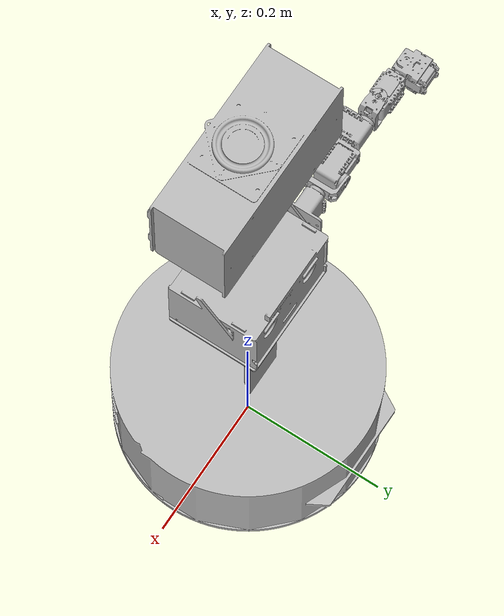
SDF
<sdf version='1.6'>
  <model name='v2mini'>
    <link name='base_footprint'>
      <pose frame=''>0 0 0 0 -0 0</pose>
      <inertial>
        <pose frame=''>0 0 0 0 -0 0</pose>
        <mass>10</mass>
        <inertia>
          <ixx>100</ixx>
          <ixy>0</ixy>
          <ixz>0</ixz>
          <iyy>100</iyy>
          <iyz>0</iyz>
          <izz>100</izz>
        </inertia>
      </inertial>
      <collision name='base_footprint_fixed_joint_lump__base_link_collision'>
        <pose frame=''>0 0 0.066 0 -0 0</pose>
        <geometry>
          <cylinder>
            <length>0.132</length>
            <radius>0.175</radius>
          </cylinder>
        </geometry>
      </collision>
      <visual name='base_footprint_fixed_joint_lump__base_link_visual'>
        <pose frame=''>0 0 0.0192 0 -0 0</pose>
        <geometry>
          <mesh>
            <scale>1 1 1</scale>
            <uri>model://v2mini_description/meshes/base/base.dae</uri>
          </mesh>
        </geometry>
      </visual>
    </link>
    <link name='back_wheel'>
      <pose frame=''>0 0.1405 0.03 0 -0 0</pose>
      <inertial>
        <pose frame=''>0 0 0 0 -0 0</pose>
        <mass>1</mass>
        <inertia>
          <ixx>1</ixx>
          <ixy>0</ixy>
          <ixz>0</ixz>
          <iyy>1</iyy>
          <iyz>0</iyz>
          <izz>1</izz>
        </inertia>
      </inertial>
      <visual name='back_wheel_visual'>
        <pose frame=''>0 0 0 0 -0 3.14159</pose>
        <geometry>
          <mesh>
            <scale>1 1 1</scale>
            <uri>model://v2mini_description/meshes/base/base_wheel.dae</uri>
          </mesh>
        </geometry>
      </visual>
    </link>
    <joint name='back_axel' type='revolute'>
      <child>back_wheel</child>
      <parent>base_footprint</parent>
      <axis>
        <xyz>0 1 0</xyz>
        <limit>
          <lower>-1e+16</lower>
          <upper>1e+16</upper>
        </limit>
        <dynamics>
          <spring_reference>0</spring_reference>
          <spring_stiffness>0</spring_stiffness>
        </dynamics>
        <use_parent_model_frame>1</use_parent_model_frame>
      </axis>
    </joint>
    <link name='front_wheel'>
      <pose frame=''>0 -0.1405 0.03 0 -0 0</pose>
      <inertial>
        <pose frame=''>0 0 0 0 -0 0</pose>
        <mass>1</mass>
        <inertia>
          <ixx>1</ixx>
          <ixy>0</ixy>
          <ixz>0</ixz>
          <iyy>1</iyy>
          <iyz>0</iyz>
          <izz>1</izz>
        </inertia>
      </inertial>
      <visual name='front_wheel_visual'>
        <pose frame=''>0 0 0 0 -0 0</pose>
        <geometry>
          <mesh>
            <scale>1 1 1</scale>
            <uri>model://v2mini_description/meshes/base/base_wheel.dae</uri>
          </mesh>
        </geometry>
      </visual>
    </link>
    <joint name='front_axel' type='revolute'>
      <child>front_wheel</child>
      <parent>base_footprint</parent>
      <axis>
        <xyz>0 1 0</xyz>
        <limit>
          <lower>-1e+16</lower>
          <upper>1e+16</upper>
        </limit>
        <dynamics>
          <spring_reference>0</spring_reference>
          <spring_stiffness>0</spring_stiffness>
        </dynamics>
        <use_parent_model_frame>1</use_parent_model_frame>
      </axis>
    </joint>
    <link name='left_wheel'>
      <pose frame=''>0.1405 0 0.03 0 -0 0</pose>
      <inertial>
        <pose frame=''>0 0 0 0 -0 0</pose>
        <mass>1</mass>
        <inertia>
          <ixx>1</ixx>
          <ixy>0</ixy>
          <ixz>0</ixz>
          <iyy>1</iyy>
          <iyz>0</iyz>
          <izz>1</izz>
        </inertia>
      </inertial>
      <visual name='left_wheel_visual'>
        <pose frame=''>0 0 0 0 -0 1.57079</pose>
        <geometry>
          <mesh>
            <scale>1 1 1</scale>
            <uri>model://v2mini_description/meshes/base/base_wheel.dae</uri>
          </mesh>
        </geometry>
      </visual>
    </link>
    <joint name='left_axel' type='revolute'>
      <child>left_wheel</child>
      <parent>base_footprint</parent>
      <axis>
        <xyz>1 0 0</xyz>
        <limit>
          <lower>-1e+16</lower>
          <upper>1e+16</upper>
        </limit>
        <dynamics>
          <spring_reference>0</spring_reference>
          <spring_stiffness>0</spring_stiffness>
        </dynamics>
        <use_parent_model_frame>1</use_parent_model_frame>
      </axis>
    </joint>
    <link name='right_wheel'>
      <pose frame=''>-0.1405 0 0.03 0 -0 0</pose>
      <inertial>
        <pose frame=''>0 0 0 0 -0 0</pose>
        <mass>1</mass>
        <inertia>
          <ixx>1</ixx>
          <ixy>0</ixy>
          <ixz>0</ixz>
          <iyy>1</iyy>
          <iyz>0</iyz>
          <izz>1</izz>
        </inertia>
      </inertial>
      <visual name='right_wheel_visual'>
        <pose frame=''>0 0 0 0 0 -1.57079</pose>
        <geometry>
          <mesh>
            <scale>1 1 1</scale>
            <uri>model://v2mini_description/meshes/base/base_wheel.dae</uri>
          </mesh>
        </geometry>
      </visual>
    </link>
    <joint name='right_axel' type='revolute'>
      <child>right_wheel</child>
      <parent>base_footprint</parent>
      <axis>
        <xyz>1 0 0</xyz>
        <limit>
          <lower>-1e+16</lower>
          <upper>1e+16</upper>
        </limit>
        <dynamics>
          <spring_reference>0</spring_reference>
          <spring_stiffness>0</spring_stiffness>
        </dynamics>
        <use_parent_model_frame>1</use_parent_model_frame>
      </axis>
    </joint>
    <link name='torso_link'>
      <pose frame=''>0 0 0 0 -0 0</pose>
      <inertial>
        <pose frame=''>0 0 0 0 -0 0</pose>
        <mass>5.01</mass>
        <inertia>
          <ixx>101</ixx>
          <ixy>0</ixy>
          <ixz>0</ixz>
          <iyy>101</iyy>
          <iyz>0</iyz>
          <izz>101</izz>
        </inertia>
      </inertial>
      <collision name='torso_link_fixed_joint_lump__arm_link1_collision'>
        <pose frame=''>0 0 0 0 -0 0</pose>
        <geometry>
          <box>
            <size>0.04 0.06 0.08</size>
          </box>
        </geometry>
      </collision>
      <visual name='torso_link_visual'>
        <pose frame=''>0 0 0.425 0 -0 0</pose>
        <geometry>
          <mesh>
            <scale>1 1 1</scale>
            <uri>model://v2mini_description/meshes/torso/torso.dae</uri>
          </mesh>
        </geometry>
      </visual>
      <visual name='torso_link_fixed_joint_lump__arm_link1_visual_1'>
        <pose frame=''>0 0 0 0 -0 0</pose>
        <geometry>
          <mesh>
            <scale>1 1 1</scale>
            <uri>model://v2mini_description/meshes/arm/arm_link1.dae</uri>
          </mesh>
        </geometry>
      </visual>
    </link>
    <joint name='torso_slide' type='prismatic'>
      <child>torso_link</child>
      <parent>base_footprint</parent>
      <axis>
        <xyz>0 0 1</xyz>
        <limit>
          <lower>-0.09</lower>
          <upper>0</upper>
          <effort>10</effort>
          <velocity>0.5</velocity>
        </limit>
        <dynamics>
          <spring_reference>0</spring_reference>
          <spring_stiffness>0</spring_stiffness>
        </dynamics>
        <use_parent_model_frame>1</use_parent_model_frame>
      </axis>
    </joint>
    <link name='neck_link'>
      <pose frame=''>0 0 0 0 -0 0</pose>
      <inertial>
        <pose frame=''>0 0 0 0 -0 0</pose>
        <mass>1</mass>
        <inertia>
          <ixx>1</ixx>
          <ixy>0</ixy>
          <ixz>0</ixz>
          <iyy>1</iyy>
          <iyz>0</iyz>
          <izz>1</izz>
        </inertia>
      </inertial>
      <visual name='neck_link_visual'>
        <pose frame=''>0 0 0.42 0 -0 0</pose>
        <geometry>
          <mesh>
            <scale>1 1 1</scale>
            <uri>model://v2mini_description/meshes/head/neck.dae</uri>
          </mesh>
        </geometry>
      </visual>
    </link>
    <joint name='neckpan' type='revolute'>
      <child>neck_link</child>
      <parent>torso_link</parent>
      <axis>
        <xyz>0 0 1</xyz>
        <limit>
          <lower>-2.9</lower>
          <upper>2.9</upper>
          <effort>10</effort>
          <velocity>10</velocity>
        </limit>
        <dynamics>
          <spring_reference>0</spring_reference>
          <spring_stiffness>0</spring_stiffness>
        </dynamics>
        <use_parent_model_frame>1</use_parent_model_frame>
      </axis>
    </joint>
    <link name='head_link'>
      <pose frame=''>0 0 0.427 0 -0 3.14</pose>
      <inertial>
        <pose frame=''>0 0 0 0 -0 0</pose>
        <mass>1</mass>
        <inertia>
          <ixx>1</ixx>
          <ixy>0</ixy>
          <ixz>0</ixz>
          <iyy>1</iyy>
          <iyz>0</iyz>
          <izz>1</izz>
        </inertia>
      </inertial>
      <collision name='head_link_collision'>
        <pose frame=''>0 0 0 0 -0 0</pose>
        <geometry>
          <box>
            <size>0 0 0</size>
          </box>
        </geometry>
      </collision>
      <visual name='head_link_visual'>
        <pose frame=''>0 0 0 0 -0 0</pose>
        <geometry>
          <mesh>
            <scale>1 1 1</scale>
            <uri>model://v2mini_description/meshes/head/head.dae</uri>
          </mesh>
        </geometry>
      </visual>
    </link>
    <joint name='neck_tilt' type='revolute'>
      <child>head_link</child>
      <parent>neck_link</parent>
      <axis>
        <xyz>-0.999999 0.001593 0</xyz>
        <limit>
          <lower>-0.5</lower>
          <upper>0.3</upper>
          <effort>1000</effort>
          <velocity>0.1</velocity>
        </limit>
        <dynamics>
          <spring_reference>0</spring_reference>
          <spring_stiffness>0</spring_stiffness>
        </dynamics>
        <use_parent_model_frame>1</use_parent_model_frame>
      </axis>
    </joint>
    <link name='arm_link2'>
      <pose frame=''>-0.158825 -0.002 0.407507 -3e-06 3e-06 3.14159</pose>
      <inertial>
        <pose frame=''>0 0 0 0 -0 0</pose>
        <mass>0.01</mass>
        <inertia>
          <ixx>1</ixx>
          <ixy>0</ixy>
          <ixz>0</ixz>
          <iyy>1</iyy>
          <iyz>0</iyz>
          <izz>1</izz>
        </inertia>
      </inertial>
      <visual name='arm_link2_visual'>
        <pose frame=''>0 0 0 3.14159 3e-06 3.14159</pose>
        <geometry>
          <mesh>
            <scale>1 1 1</scale>
            <uri>model://v2mini_description/meshes/arm/arm_link2.dae</uri>
          </mesh>
        </geometry>
      </visual>
    </link>
    <joint name='arm_joint1' type='revolute'>
      <child>arm_link2</child>
      <parent>torso_link</parent>
      <axis>
        <xyz>-1 0 -3e-06</xyz>
        <limit>
          <lower>-1e+16</lower>
          <upper>1e+16</upper>
        </limit>
        <dynamics>
          <spring_reference>0</spring_reference>
          <spring_stiffness>0</spring_stiffness>
        </dynamics>
        <use_parent_model_frame>1</use_parent_model_frame>
      </axis>
    </joint>
    <link name='arm_link3'>
      <pose frame=''>-0.184825 -0.002 0.407507 1.57079 -3e-06 1.57079</pose>
      <inertial>
        <pose frame=''>0 0 0 0 -0 0</pose>
        <mass>0.01</mass>
        <inertia>
          <ixx>1</ixx>
          <ixy>0</ixy>
          <ixz>0</ixz>
          <iyy>1</iyy>
          <iyz>0</iyz>
          <izz>1</izz>
        </inertia>
      </inertial>
      <visual name='arm_link3_visual'>
        <pose frame=''>0 0 0 3.14159 -1.57079 1.5708</pose>
        <geometry>
          <mesh>
            <scale>1 1 1</scale>
            <uri>model://v2mini_description/meshes/arm/arm_link3.dae</uri>
          </mesh>
        </geometry>
      </visual>
    </link>
    <joint name='arm_joint2' type='revolute'>
      <child>arm_link3</child>
      <parent>arm_link2</parent>
      <axis>
        <xyz>-4e-06 -1 -3e-06</xyz>
        <limit>
          <lower>-0.3</lower>
          <upper>1.6</upper>
          <effort>1000</effort>
          <velocity>0.1</velocity>
        </limit>
        <dynamics>
          <spring_reference>0</spring_reference>
          <spring_stiffness>0</spring_stiffness>
        </dynamics>
        <use_parent_model_frame>1</use_parent_model_frame>
      </axis>
    </joint>
    <link name='arm_link4'>
      <pose frame=''>-0.270325 -0.002 0.407507 1.57079 4e-06 3.14159</pose>
      <inertial>
        <pose frame=''>0 0 0 0 -0 0</pose>
        <mass>0.01</mass>
        <inertia>
          <ixx>1</ixx>
          <ixy>0</ixy>
          <ixz>0</ixz>
          <iyy>1</iyy>
          <iyz>0</iyz>
          <izz>1</izz>
        </inertia>
      </inertial>
      <visual name='arm_link4_visual'>
        <pose frame=''>0 0 0 -1.5708 3e-06 3.14159</pose>
        <geometry>
          <mesh>
            <scale>1 1 1</scale>
            <uri>model://v2mini_description/meshes/arm/arm_link4.dae</uri>
          </mesh>
        </geometry>
      </visual>
    </link>
    <joint name='arm_joint3' type='revolute'>
      <child>arm_link4</child>
      <parent>arm_link3</parent>
      <axis>
        <xyz>-1 5e-06 -4e-06</xyz>
        <limit>
          <lower>-3</lower>
          <upper>3</upper>
          <effort>1000</effort>
          <velocity>0.1</velocity>
        </limit>
        <dynamics>
          <spring_reference>0</spring_reference>
          <spring_stiffness>0</spring_stiffness>
        </dynamics>
        <use_parent_model_frame>1</use_parent_model_frame>
      </axis>
    </joint>
    <link name='arm_link5'>
      <pose frame=''>-0.296325 -0.002 0.407506 -0.46365 -1.57079 -2.67795</pose>
      <inertial>
        <pose frame=''>0 0 0 0 -0 0</pose>
        <mass>0.01</mass>
        <inertia>
          <ixx>1</ixx>
          <ixy>0</ixy>
          <ixz>0</ixz>
          <iyy>1</iyy>
          <iyz>0</iyz>
          <izz>1</izz>
        </inertia>
      </inertial>
      <visual name='arm_link5_visual'>
        <pose frame=''>0 0 0 -1.57079 -0 -1.57079</pose>
        <geometry>
          <mesh>
            <scale>1 1 1</scale>
            <uri>model://v2mini_description/meshes/arm/arm_link5.dae</uri>
          </mesh>
        </geometry>
      </visual>
    </link>
    <joint name='arm_joint4' type='revolute'>
      <child>arm_link5</child>
      <parent>arm_link4</parent>
      <axis>
        <xyz>5e-06 3e-06 -1</xyz>
        <limit>
          <lower>-1.5</lower>
          <upper>1.5</upper>
          <effort>1000</effort>
          <velocity>0.1</velocity>
        </limit>
        <dynamics>
          <spring_reference>0</spring_reference>
          <spring_stiffness>0</spring_stiffness>
        </dynamics>
        <use_parent_model_frame>1</use_parent_model_frame>
      </axis>
    </joint>
    <link name='arm_link6'>
      <pose frame=''>-0.337825 -0.001999 0.407506 1.5708 -7e-06 -4e-06</pose>
      <inertial>
        <pose frame=''>0 0 0 0 -0 0</pose>
        <mass>1.01</mass>
        <inertia>
          <ixx>2</ixx>
          <ixy>0</ixy>
          <ixz>0</ixz>
          <iyy>2</iyy>
          <iyz>0</iyz>
          <izz>2</izz>
        </inertia>
      </inertial>
      <collision name='arm_link6_fixed_joint_lump__ee_link_collision'>
        <pose frame=''>0 0 0 0 -0 0</pose>
        <geometry>
          <box>
            <size>0.01 0.01 0.01</size>
          </box>
        </geometry>
      </collision>
      <visual name='arm_link6_visual'>
        <pose frame=''>0 0 0 -3.14159 1.57079 1.57079</pose>
        <geometry>
          <mesh>
            <scale>1 1 1</scale>
            <uri>model://v2mini_description/meshes/arm/arm_link6.dae</uri>
          </mesh>
        </geometry>
      </visual>
    </link>
    <joint name='arm_joint5' type='revolute'>
      <child>arm_link6</child>
      <parent>arm_link5</parent>
      <axis>
        <xyz>-1 4e-06 -7e-06</xyz>
        <limit>
          <lower>-3</lower>
          <upper>3</upper>
          <effort>1000</effort>
          <velocity>0.1</velocity>
        </limit>
        <dynamics>
          <spring_reference>0</spring_reference>
          <spring_stiffness>0</spring_stiffness>
        </dynamics>
        <use_parent_model_frame>1</use_parent_model_frame>
      </axis>
    </joint>
    <plugin name='ros_control' filename='libgazebo_ros_control.so'>
      <robotNamespace>/</robotNamespace>
      <robotSimType>gazebo_ros_control/DefaultRobotHWSim</robotSimType>
    </plugin>
    <plugin name='object_controller' filename='libgazebo_ros_planar_move.so'>
      <commandTopic>cmd_vel</commandTopic>
      <odometryTopic>odom</odometryTopic>
      <odometryFrame>odom</odometryFrame>
      <odometryRate>20.0</odometryRate>
      <robotBaseFrame>base_footprint</robotBaseFrame>
    </plugin>
    <static>0</static>
    <plugin name='gazebo_imu' filename='libgazebo_ros_imu.so'>
      <alwaysOn>true</alwaysOn>
      <bodyName>base_footprint</bodyName>
      <topicName>imu</topicName>
      <serviceName>imu_service</serviceName>
      <gaussianNoise>0.0</gaussianNoise>
      <updateRate>20.0</updateRate>
    </plugin>
  </model>
</sdf>
